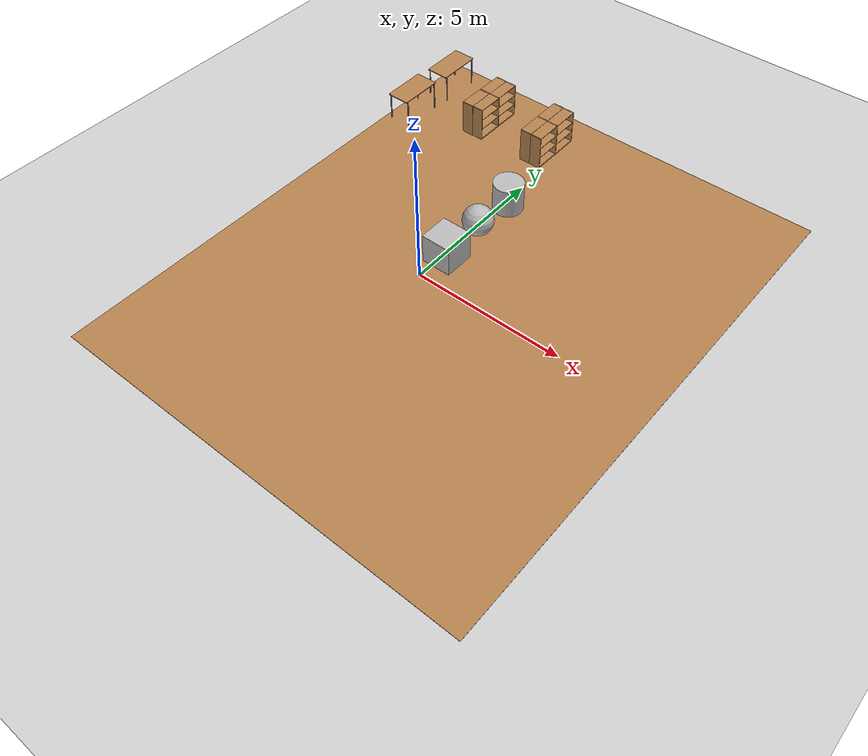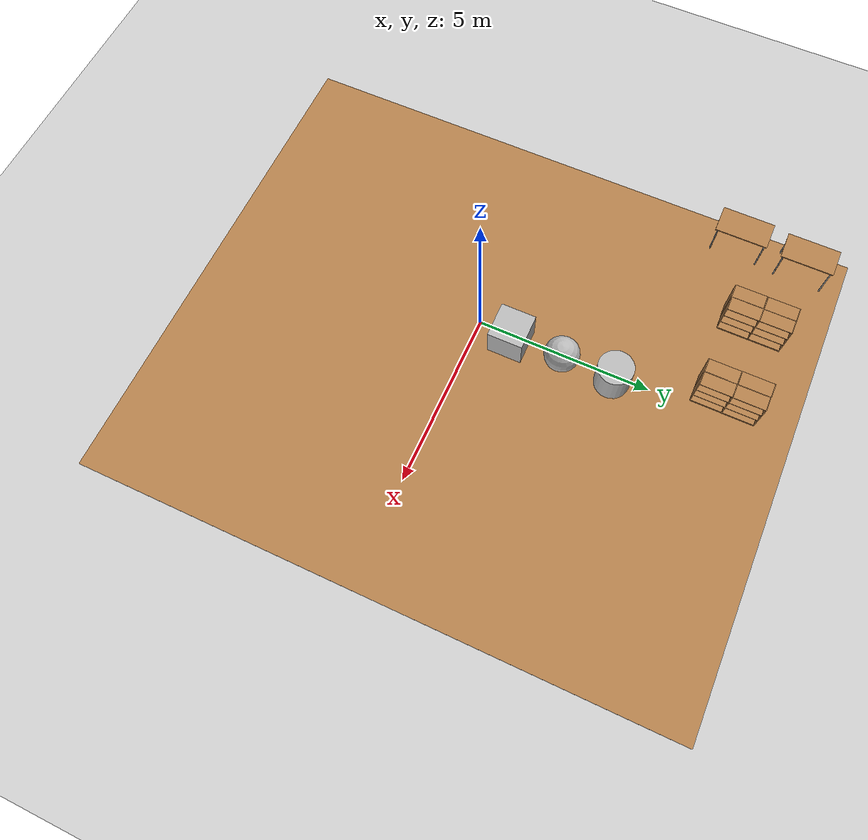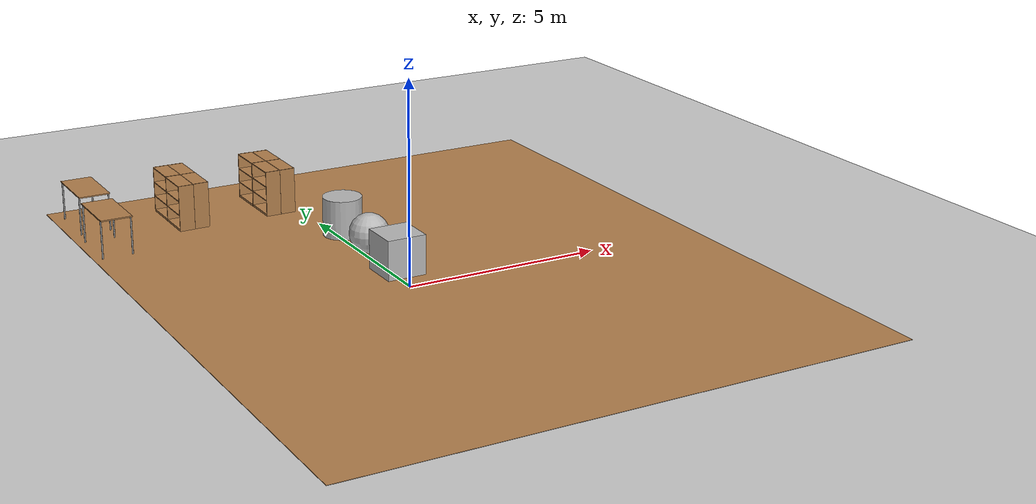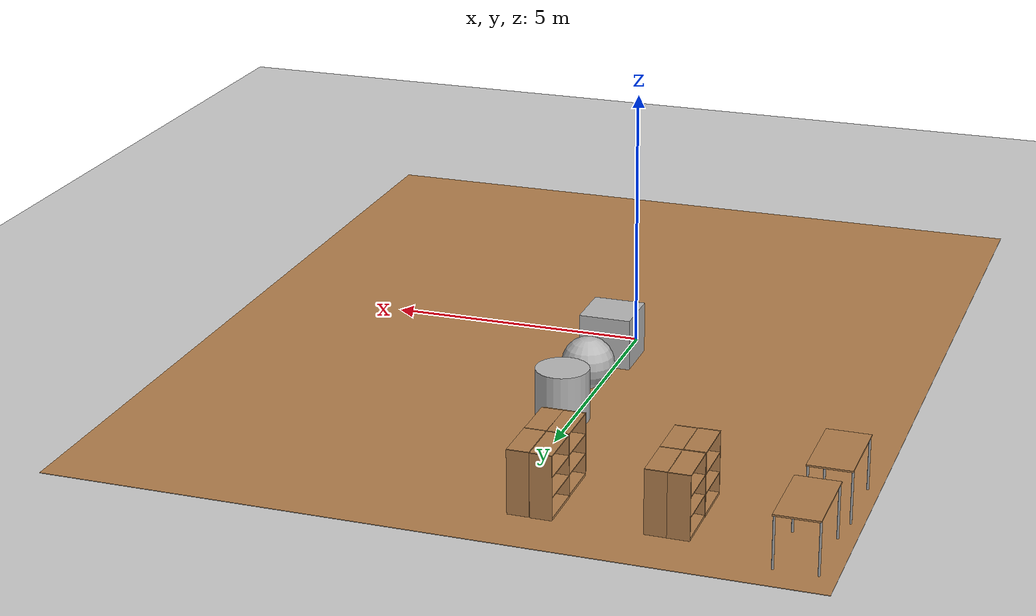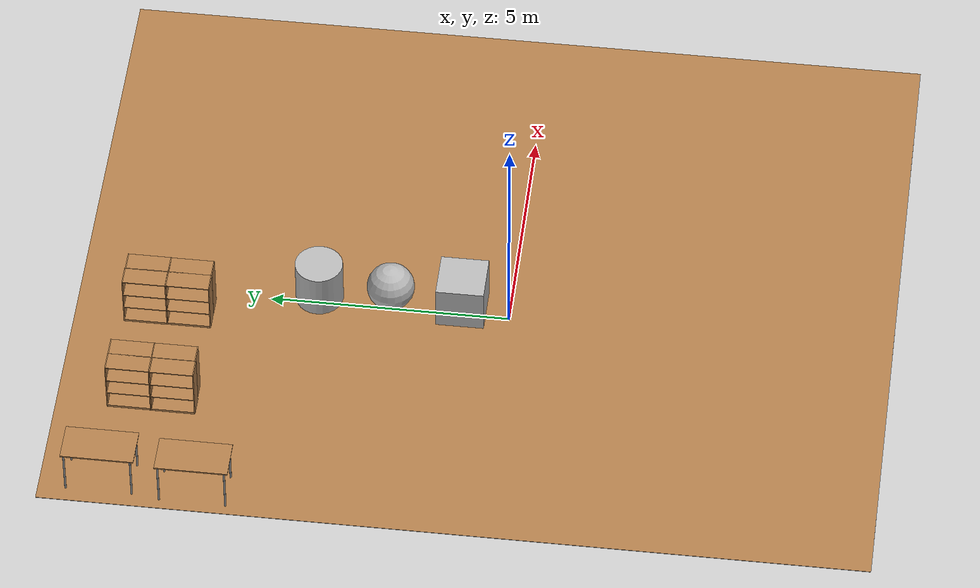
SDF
<sdf version="1.7">
 <world name="default">
  <model name="ground_plane">
   <static>1</static>
   <link name="link">
    <collision name="collision">
     <geometry><plane><normal>0 0 1</normal><size>100 100</size></plane></geometry>
     <surface>
      <contact><collide_bitmask>65535</collide_bitmask></contact>
      <friction><ode><mu>100</mu><mu2>50</mu2></ode></friction>
     </surface>
    </collision>
    <visual name="visual">
     <cast_shadows>0</cast_shadows>
     <geometry><plane><normal>0 0 1</normal><size>100 100</size></plane></geometry>
     <material>
      <script><uri>file://media/materials/scripts/gazebo.material</uri><name>Gazebo/Grey</name></script>
     </material>
    </visual>
   </link>
  </model>
  <model name="ground">
   <link name="Wall_2">
    <pose>6.2457 -16.572 0 0 -0 0</pose>
    <inertial>
     <mass>1</mass>
     <inertia><ixx>1</ixx><ixy>0</ixy><ixz>0</ixz><iyy>1</iyy><iyz>0</iyz><izz>1</izz></inertia>
    </inertial>
    <visual name="Wall_2_Visual">
     <pose>0 0 0.005 0 -0 0</pose>
     <geometry><box><size>14 17 0.01</size></box></geometry>
     <material>
      <script><uri>file://media/materials/scripts/gazebo.material</uri><name>Gazebo/Wood</name></script>
      <ambient>0 0 0 1</ambient>
      <shader type="pixel"><normal_map>__default__</normal_map></shader>
      <diffuse>1 1 1 1</diffuse>
      <specular>0.2 0.2 0.2 1</specular>
      <emissive>0 0 0 1</emissive>
     </material>
     <meta><layer>0</layer></meta>
    </visual>
    <collision name="Wall_2_Collision">
     <pose>0 0 0.005 0 -0 0</pose>
     <geometry><box><size>14 17 0.01</size></box></geometry>
     <surface>
      <friction>
       <ode><mu>1</mu><mu2>1</mu2><fdir1>0 0 0</fdir1><slip1>0</slip1><slip2>0</slip2></ode>
       <torsional>
        <coefficient>1</coefficient>
        <patch_radius>0</patch_radius>
        <surface_radius>0</surface_radius>
        <use_patch_radius>1</use_patch_radius>
        <ode><slip>0</slip></ode>
       </torsional>
      </friction>
      <bounce><restitution_coefficient>0</restitution_coefficient><threshold>1e+06</threshold></bounce>
      <contact>
       <collide_without_contact>0</collide_without_contact>
       <collide_without_contact_bitmask>1</collide_without_contact_bitmask>
       <collide_bitmask>1</collide_bitmask>
       <ode>
        <soft_cfm>0</soft_cfm>
        <soft_erp>0.2</soft_erp>
        <kp>1e+13</kp>
        <kd>1</kd>
        <max_vel>0.01</max_vel>
        <min_depth>0</min_depth>
       </ode>
       <bullet>
        <split_impulse>1</split_impulse>
        <split_impulse_penetration_threshold>-0.01</split_impulse_penetration_threshold>
        <soft_cfm>0</soft_cfm>
        <soft_erp>0.2</soft_erp>
        <kp>1e+13</kp>
        <kd>1</kd>
       </bullet>
      </contact>
     </surface>
    </collision>
   </link>
   <static>1</static>
   <pose>-5.17108 17.0771 0 0 -0 0</pose>
  </model>
  <model name="textured_shapes">
   <pose>0.185477 2.50227 0.51 0 -0 0.000163</pose>
   <link name="box">
    <pose>0 -1.5 0 0 -0 0</pose>
    <collision name="collision"><geometry><box><size>1 1 1</size></box></geometry></collision>
    <visual name="visual">
     <geometry><box><size>1 1 1</size></box></geometry>
     <material>
      <script>
       <uri>model://textured_shapes/materials/scripts</uri>
       <uri>model://textured_shapes/materials/textures</uri>
       <name>TexturedShape/Squares</name>
      </script>
     </material>
    </visual>
    <inertial>
     <inertia><ixx>1</ixx><ixy>0</ixy><ixz>0</ixz><iyy>1</iyy><iyz>0</iyz><izz>1</izz></inertia>
     <mass>1</mass>
    </inertial>
   </link>
   <link name="sphere">
    <collision name="collision"><geometry><sphere><radius>0.5</radius></sphere></geometry></collision>
    <visual name="visual">
     <geometry><sphere><radius>0.5</radius></sphere></geometry>
     <material>
      <script>
       <uri>model://textured_shapes/materials/scripts</uri>
       <uri>model://textured_shapes/materials/textures</uri>
       <name>TexturedShape/Squares</name>
      </script>
     </material>
    </visual>
    <inertial>
     <inertia><ixx>1</ixx><ixy>0</ixy><ixz>0</ixz><iyy>1</iyy><iyz>0</iyz><izz>1</izz></inertia>
     <mass>1</mass>
    </inertial>
   </link>
   <link name="cylinder">
    <pose>0 1.5 0 0 -0 0</pose>
    <collision name="collision">
     <geometry><cylinder><radius>0.5</radius><length>1</length></cylinder></geometry>
    </collision>
    <visual name="visual">
     <geometry><cylinder><radius>0.5</radius><length>1</length></cylinder></geometry>
     <material>
      <script>
       <uri>model://textured_shapes/materials/scripts</uri>
       <uri>model://textured_shapes/materials/textures</uri>
       <name>TexturedShape/Squares</name>
      </script>
     </material>
    </visual>
    <inertial>
     <inertia><ixx>1</ixx><ixy>0</ixy><ixz>0</ixz><iyy>1</iyy><iyz>0</iyz><izz>1</izz></inertia>
     <mass>1</mass>
    </inertial>
   </link>
  </model>
  <model name="table_0">
   <static>1</static>
   <link name="link">
    <collision name="surface">
     <pose>0 0 1 0 -0 0</pose>
     <geometry><box><size>1.5 0.8 0.03</size></box></geometry>
     <surface><friction><ode><mu>0.6</mu><mu2>0.6</mu2></ode></friction></surface>
    </collision>
    <visual name="visual1">
     <pose>0 0 1 0 -0 0</pose>
     <geometry><box><size>1.5 0.8 0.03</size></box></geometry>
     <material>
      <script><uri>file://media/materials/scripts/gazebo.material</uri><name>Gazebo/Wood</name></script>
     </material>
    </visual>
    <collision name="front_left_leg">
     <pose>0.68 0.38 0.5 0 -0 0</pose>
     <geometry><cylinder><radius>0.02</radius><length>1</length></cylinder></geometry>
    </collision>
    <visual name="front_left_leg">
     <pose>0.68 0.38 0.5 0 -0 0</pose>
     <geometry><cylinder><radius>0.02</radius><length>1</length></cylinder></geometry>
     <material>
      <script><uri>file://media/materials/scripts/gazebo.material</uri><name>Gazebo/Grey</name></script>
     </material>
    </visual>
    <collision name="front_right_leg">
     <pose>0.68 -0.38 0.5 0 -0 0</pose>
     <geometry><cylinder><radius>0.02</radius><length>1</length></cylinder></geometry>
    </collision>
    <visual name="front_right_leg">
     <pose>0.68 -0.38 0.5 0 -0 0</pose>
     <geometry><cylinder><radius>0.02</radius><length>1</length></cylinder></geometry>
     <material>
      <script><uri>file://media/materials/scripts/gazebo.material</uri><name>Gazebo/Grey</name></script>
     </material>
    </visual>
    <collision name="back_right_leg">
     <pose>-0.68 -0.38 0.5 0 -0 0</pose>
     <geometry><cylinder><radius>0.02</radius><length>1</length></cylinder></geometry>
    </collision>
    <visual name="back_right_leg">
     <pose>-0.68 -0.38 0.5 0 -0 0</pose>
     <geometry><cylinder><radius>0.02</radius><length>1</length></cylinder></geometry>
     <material>
      <script><uri>file://media/materials/scripts/gazebo.material</uri><name>Gazebo/Grey</name></script>
     </material>
    </visual>
    <collision name="back_left_leg">
     <pose>-0.68 0.38 0.5 0 -0 0</pose>
     <geometry><cylinder><radius>0.02</radius><length>1</length></cylinder></geometry>
    </collision>
    <visual name="back_left_leg">
     <pose>-0.68 0.38 0.5 0 -0 0</pose>
     <geometry><cylinder><radius>0.02</radius><length>1</length></cylinder></geometry>
     <material>
      <script><uri>file://media/materials/scripts/gazebo.material</uri><name>Gazebo/Grey</name></script>
     </material>
    </visual>
   </link>
   <pose>-5.2296 7.75467 0 0 -0 1.5708</pose>
  </model>
  <model name="table_0_clone">
   <static>1</static>
   <link name="link">
    <collision name="surface">
     <pose>0 0 1 0 -0 0</pose>
     <geometry><box><size>1.5 0.8 0.03</size></box></geometry>
     <surface><friction><ode><mu>0.6</mu><mu2>0.6</mu2></ode></friction></surface>
    </collision>
    <visual name="visual1">
     <pose>0 0 1 0 -0 0</pose>
     <geometry><box><size>1.5 0.8 0.03</size></box></geometry>
     <material>
      <script><uri>file://media/materials/scripts/gazebo.material</uri><name>Gazebo/Wood</name></script>
     </material>
    </visual>
    <collision name="front_left_leg">
     <pose>0.68 0.38 0.5 0 -0 0</pose>
     <geometry><cylinder><radius>0.02</radius><length>1</length></cylinder></geometry>
    </collision>
    <visual name="front_left_leg">
     <pose>0.68 0.38 0.5 0 -0 0</pose>
     <geometry><cylinder><radius>0.02</radius><length>1</length></cylinder></geometry>
     <material>
      <script><uri>file://media/materials/scripts/gazebo.material</uri><name>Gazebo/Grey</name></script>
     </material>
    </visual>
    <collision name="front_right_leg">
     <pose>0.68 -0.38 0.5 0 -0 0</pose>
     <geometry><cylinder><radius>0.02</radius><length>1</length></cylinder></geometry>
    </collision>
    <visual name="front_right_leg">
     <pose>0.68 -0.38 0.5 0 -0 0</pose>
     <geometry><cylinder><radius>0.02</radius><length>1</length></cylinder></geometry>
     <material>
      <script><uri>file://media/materials/scripts/gazebo.material</uri><name>Gazebo/Grey</name></script>
     </material>
    </visual>
    <collision name="back_right_leg">
     <pose>-0.68 -0.38 0.5 0 -0 0</pose>
     <geometry><cylinder><radius>0.02</radius><length>1</length></cylinder></geometry>
    </collision>
    <visual name="back_right_leg">
     <pose>-0.68 -0.38 0.5 0 -0 0</pose>
     <geometry><cylinder><radius>0.02</radius><length>1</length></cylinder></geometry>
     <material>
      <script><uri>file://media/materials/scripts/gazebo.material</uri><name>Gazebo/Grey</name></script>
     </material>
    </visual>
    <collision name="back_left_leg">
     <pose>-0.68 0.38 0.5 0 -0 0</pose>
     <geometry><cylinder><radius>0.02</radius><length>1</length></cylinder></geometry>
    </collision>
    <visual name="back_left_leg">
     <pose>-0.68 0.38 0.5 0 -0 0</pose>
     <geometry><cylinder><radius>0.02</radius><length>1</length></cylinder></geometry>
     <material>
      <script><uri>file://media/materials/scripts/gazebo.material</uri><name>Gazebo/Grey</name></script>
     </material>
    </visual>
   </link>
   <pose>-5.32331 5.82081 0 0 -0 1.5708</pose>
  </model>
  <model name="bookshelf_clone_1">
   <static>1</static>
   <link name="link">
    <inertial><mass>1</mass></inertial>
    <collision name="back">
     <pose>0 0.005 0.6 0 -0 0</pose>
     <geometry><box><size>0.9 0.01 1.2</size></box></geometry>
    </collision>
    <visual name="visual1">
     <pose>0 0.005 0.6 0 -0 0</pose>
     <geometry><box><size>0.9 0.01 1.2</size></box></geometry>
     <material>
      <script><uri>file://media/materials/scripts/gazebo.material</uri><name>Gazebo/Wood</name></script>
     </material>
    </visual>
    <collision name="left_side">
     <pose>0.45 -0.195 0.6 0 -0 0</pose>
     <geometry><box><size>0.02 0.4 1.2</size></box></geometry>
    </collision>
    <visual name="visual2">
     <pose>0.45 -0.195 0.6 0 -0 0</pose>
     <geometry><box><size>0.02 0.4 1.2</size></box></geometry>
     <material>
      <script><uri>file://media/materials/scripts/gazebo.material</uri><name>Gazebo/Wood</name></script>
     </material>
    </visual>
    <collision name="right_side">
     <pose>-0.45 -0.195 0.6 0 -0 0</pose>
     <geometry><box><size>0.02 0.4 1.2</size></box></geometry>
    </collision>
    <visual name="visual3">
     <pose>-0.45 -0.195 0.6 0 -0 0</pose>
     <geometry><box><size>0.02 0.4 1.2</size></box></geometry>
     <material>
      <script><uri>file://media/materials/scripts/gazebo.material</uri><name>Gazebo/Wood</name></script>
     </material>
    </visual>
    <collision name="bottom">
     <pose>0 -0.195 0.03 0 -0 0</pose>
     <geometry><box><size>0.88 0.4 0.06</size></box></geometry>
    </collision>
    <visual name="visual4">
     <pose>0 -0.195 0.03 0 -0 0</pose>
     <geometry><box><size>0.88 0.4 0.06</size></box></geometry>
     <material>
      <script><uri>file://media/materials/scripts/gazebo.material</uri><name>Gazebo/Wood</name></script>
     </material>
    </visual>
    <collision name="top">
     <pose>0 -0.195 1.19 0 -0 0</pose>
     <geometry><box><size>0.88 0.4 0.02</size></box></geometry>
    </collision>
    <visual name="visual5">
     <pose>0 -0.195 1.19 0 -0 0</pose>
     <geometry><box><size>0.88 0.4 0.02</size></box></geometry>
     <material>
      <script><uri>file://media/materials/scripts/gazebo.material</uri><name>Gazebo/Wood</name></script>
     </material>
    </visual>
    <collision name="low_shelf">
     <pose>0 -0.195 0.43 0 -0 0</pose>
     <geometry><box><size>0.88 0.4 0.02</size></box></geometry>
    </collision>
    <visual name="visual6">
     <pose>0 -0.195 0.43 0 -0 0</pose>
     <geometry><box><size>0.88 0.4 0.02</size></box></geometry>
     <material>
      <script><uri>file://media/materials/scripts/gazebo.material</uri><name>Gazebo/Wood</name></script>
     </material>
    </visual>
    <collision name="high_shelf">
     <pose>0 -0.195 0.8 0 -0 0</pose>
     <geometry><box><size>0.88 0.4 0.02</size></box></geometry>
    </collision>
    <visual name="visual7">
     <pose>0 -0.195 0.8 0 -0 0</pose>
     <geometry><box><size>0.88 0.4 0.02</size></box></geometry>
     <material>
      <script><uri>file://media/materials/scripts/gazebo.material</uri><name>Gazebo/Wood</name></script>
     </material>
    </visual>
   </link>
   <pose>-0.570351 7.49958 0 0 0 -1.5708</pose>
  </model>
  <model name="bookshelf_clone_2">
   <static>1</static>
   <link name="link">
    <inertial><mass>1</mass></inertial>
    <collision name="back">
     <pose>0 0.005 0.6 0 -0 0</pose>
     <geometry><box><size>0.9 0.01 1.2</size></box></geometry>
    </collision>
    <visual name="visual1">
     <pose>0 0.005 0.6 0 -0 0</pose>
     <geometry><box><size>0.9 0.01 1.2</size></box></geometry>
     <material>
      <script><uri>file://media/materials/scripts/gazebo.material</uri><name>Gazebo/Wood</name></script>
     </material>
    </visual>
    <collision name="left_side">
     <pose>0.45 -0.195 0.6 0 -0 0</pose>
     <geometry><box><size>0.02 0.4 1.2</size></box></geometry>
    </collision>
    <visual name="visual2">
     <pose>0.45 -0.195 0.6 0 -0 0</pose>
     <geometry><box><size>0.02 0.4 1.2</size></box></geometry>
     <material>
      <script><uri>file://media/materials/scripts/gazebo.material</uri><name>Gazebo/Wood</name></script>
     </material>
    </visual>
    <collision name="right_side">
     <pose>-0.45 -0.195 0.6 0 -0 0</pose>
     <geometry><box><size>0.02 0.4 1.2</size></box></geometry>
    </collision>
    <visual name="visual3">
     <pose>-0.45 -0.195 0.6 0 -0 0</pose>
     <geometry><box><size>0.02 0.4 1.2</size></box></geometry>
     <material>
      <script><uri>file://media/materials/scripts/gazebo.material</uri><name>Gazebo/Wood</name></script>
     </material>
    </visual>
    <collision name="bottom">
     <pose>0 -0.195 0.03 0 -0 0</pose>
     <geometry><box><size>0.88 0.4 0.06</size></box></geometry>
    </collision>
    <visual name="visual4">
     <pose>0 -0.195 0.03 0 -0 0</pose>
     <geometry><box><size>0.88 0.4 0.06</size></box></geometry>
     <material>
      <script><uri>file://media/materials/scripts/gazebo.material</uri><name>Gazebo/Wood</name></script>
     </material>
    </visual>
    <collision name="top">
     <pose>0 -0.195 1.19 0 -0 0</pose>
     <geometry><box><size>0.88 0.4 0.02</size></box></geometry>
    </collision>
    <visual name="visual5">
     <pose>0 -0.195 1.19 0 -0 0</pose>
     <geometry><box><size>0.88 0.4 0.02</size></box></geometry>
     <material>
      <script><uri>file://media/materials/scripts/gazebo.material</uri><name>Gazebo/Wood</name></script>
     </material>
    </visual>
    <collision name="low_shelf">
     <pose>0 -0.195 0.43 0 -0 0</pose>
     <geometry><box><size>0.88 0.4 0.02</size></box></geometry>
    </collision>
    <visual name="visual6">
     <pose>0 -0.195 0.43 0 -0 0</pose>
     <geometry><box><size>0.88 0.4 0.02</size></box></geometry>
     <material>
      <script><uri>file://media/materials/scripts/gazebo.material</uri><name>Gazebo/Wood</name></script>
     </material>
    </visual>
    <collision name="high_shelf">
     <pose>0 -0.195 0.8 0 -0 0</pose>
     <geometry><box><size>0.88 0.4 0.02</size></box></geometry>
    </collision>
    <visual name="visual7">
     <pose>0 -0.195 0.8 0 -0 0</pose>
     <geometry><box><size>0.88 0.4 0.02</size></box></geometry>
     <material>
      <script><uri>file://media/materials/scripts/gazebo.material</uri><name>Gazebo/Wood</name></script>
     </material>
    </visual>
   </link>
   <pose>-0.563736 6.59398 0 0 0 -1.5708</pose>
  </model>
  <model name="bookshelf_clone_3">
   <static>1</static>
   <link name="link">
    <inertial><mass>1</mass></inertial>
    <collision name="back">
     <pose>0 0.005 0.6 0 -0 0</pose>
     <geometry><box><size>0.9 0.01 1.2</size></box></geometry>
    </collision>
    <visual name="visual1">
     <pose>0 0.005 0.6 0 -0 0</pose>
     <geometry><box><size>0.9 0.01 1.2</size></box></geometry>
     <material>
      <script><uri>file://media/materials/scripts/gazebo.material</uri><name>Gazebo/Wood</name></script>
     </material>
    </visual>
    <collision name="left_side">
     <pose>0.45 -0.195 0.6 0 -0 0</pose>
     <geometry><box><size>0.02 0.4 1.2</size></box></geometry>
    </collision>
    <visual name="visual2">
     <pose>0.45 -0.195 0.6 0 -0 0</pose>
     <geometry><box><size>0.02 0.4 1.2</size></box></geometry>
     <material>
      <script><uri>file://media/materials/scripts/gazebo.material</uri><name>Gazebo/Wood</name></script>
     </material>
    </visual>
    <collision name="right_side">
     <pose>-0.45 -0.195 0.6 0 -0 0</pose>
     <geometry><box><size>0.02 0.4 1.2</size></box></geometry>
    </collision>
    <visual name="visual3">
     <pose>-0.45 -0.195 0.6 0 -0 0</pose>
     <geometry><box><size>0.02 0.4 1.2</size></box></geometry>
     <material>
      <script><uri>file://media/materials/scripts/gazebo.material</uri><name>Gazebo/Wood</name></script>
     </material>
    </visual>
    <collision name="bottom">
     <pose>0 -0.195 0.03 0 -0 0</pose>
     <geometry><box><size>0.88 0.4 0.06</size></box></geometry>
    </collision>
    <visual name="visual4">
     <pose>0 -0.195 0.03 0 -0 0</pose>
     <geometry><box><size>0.88 0.4 0.06</size></box></geometry>
     <material>
      <script><uri>file://media/materials/scripts/gazebo.material</uri><name>Gazebo/Wood</name></script>
     </material>
    </visual>
    <collision name="top">
     <pose>0 -0.195 1.19 0 -0 0</pose>
     <geometry><box><size>0.88 0.4 0.02</size></box></geometry>
    </collision>
    <visual name="visual5">
     <pose>0 -0.195 1.19 0 -0 0</pose>
     <geometry><box><size>0.88 0.4 0.02</size></box></geometry>
     <material>
      <script><uri>file://media/materials/scripts/gazebo.material</uri><name>Gazebo/Wood</name></script>
     </material>
    </visual>
    <collision name="low_shelf">
     <pose>0 -0.195 0.43 0 -0 0</pose>
     <geometry><box><size>0.88 0.4 0.02</size></box></geometry>
    </collision>
    <visual name="visual6">
     <pose>0 -0.195 0.43 0 -0 0</pose>
     <geometry><box><size>0.88 0.4 0.02</size></box></geometry>
     <material>
      <script><uri>file://media/materials/scripts/gazebo.material</uri><name>Gazebo/Wood</name></script>
     </material>
    </visual>
    <collision name="high_shelf">
     <pose>0 -0.195 0.8 0 -0 0</pose>
     <geometry><box><size>0.88 0.4 0.02</size></box></geometry>
    </collision>
    <visual name="visual7">
     <pose>0 -0.195 0.8 0 -0 0</pose>
     <geometry><box><size>0.88 0.4 0.02</size></box></geometry>
     <material>
      <script><uri>file://media/materials/scripts/gazebo.material</uri><name>Gazebo/Wood</name></script>
     </material>
    </visual>
   </link>
   <pose>-2.94499 7.48329 0 0 0 -1.5708</pose>
  </model>
  <model name="bookshelf_clone_4">
   <static>1</static>
   <link name="link">
    <inertial><mass>1</mass></inertial>
    <collision name="back">
     <pose>0 0.005 0.6 0 -0 0</pose>
     <geometry><box><size>0.9 0.01 1.2</size></box></geometry>
    </collision>
    <visual name="visual1">
     <pose>0 0.005 0.6 0 -0 0</pose>
     <geometry><box><size>0.9 0.01 1.2</size></box></geometry>
     <material>
      <script><uri>file://media/materials/scripts/gazebo.material</uri><name>Gazebo/Wood</name></script>
     </material>
    </visual>
    <collision name="left_side">
     <pose>0.45 -0.195 0.6 0 -0 0</pose>
     <geometry><box><size>0.02 0.4 1.2</size></box></geometry>
    </collision>
    <visual name="visual2">
     <pose>0.45 -0.195 0.6 0 -0 0</pose>
     <geometry><box><size>0.02 0.4 1.2</size></box></geometry>
     <material>
      <script><uri>file://media/materials/scripts/gazebo.material</uri><name>Gazebo/Wood</name></script>
     </material>
    </visual>
    <collision name="right_side">
     <pose>-0.45 -0.195 0.6 0 -0 0</pose>
     <geometry><box><size>0.02 0.4 1.2</size></box></geometry>
    </collision>
    <visual name="visual3">
     <pose>-0.45 -0.195 0.6 0 -0 0</pose>
     <geometry><box><size>0.02 0.4 1.2</size></box></geometry>
     <material>
      <script><uri>file://media/materials/scripts/gazebo.material</uri><name>Gazebo/Wood</name></script>
     </material>
    </visual>
    <collision name="bottom">
     <pose>0 -0.195 0.03 0 -0 0</pose>
     <geometry><box><size>0.88 0.4 0.06</size></box></geometry>
    </collision>
    <visual name="visual4">
     <pose>0 -0.195 0.03 0 -0 0</pose>
     <geometry><box><size>0.88 0.4 0.06</size></box></geometry>
     <material>
      <script><uri>file://media/materials/scripts/gazebo.material</uri><name>Gazebo/Wood</name></script>
     </material>
    </visual>
    <collision name="top">
     <pose>0 -0.195 1.19 0 -0 0</pose>
     <geometry><box><size>0.88 0.4 0.02</size></box></geometry>
    </collision>
    <visual name="visual5">
     <pose>0 -0.195 1.19 0 -0 0</pose>
     <geometry><box><size>0.88 0.4 0.02</size></box></geometry>
     <material>
      <script><uri>file://media/materials/scripts/gazebo.material</uri><name>Gazebo/Wood</name></script>
     </material>
    </visual>
    <collision name="low_shelf">
     <pose>0 -0.195 0.43 0 -0 0</pose>
     <geometry><box><size>0.88 0.4 0.02</size></box></geometry>
    </collision>
    <visual name="visual6">
     <pose>0 -0.195 0.43 0 -0 0</pose>
     <geometry><box><size>0.88 0.4 0.02</size></box></geometry>
     <material>
      <script><uri>file://media/materials/scripts/gazebo.material</uri><name>Gazebo/Wood</name></script>
     </material>
    </visual>
    <collision name="high_shelf">
     <pose>0 -0.195 0.8 0 -0 0</pose>
     <geometry><box><size>0.88 0.4 0.02</size></box></geometry>
    </collision>
    <visual name="visual7">
     <pose>0 -0.195 0.8 0 -0 0</pose>
     <geometry><box><size>0.88 0.4 0.02</size></box></geometry>
     <material>
      <script><uri>file://media/materials/scripts/gazebo.material</uri><name>Gazebo/Wood</name></script>
     </material>
    </visual>
   </link>
   <pose>-2.94936 6.5693 0 0 0 -1.5708</pose>
  </model>
  <model name="bookshelf_clone_3_clone">
   <static>1</static>
   <link name="link">
    <inertial><mass>1</mass></inertial>
    <collision name="back">
     <pose>0 0.005 0.6 0 -0 0</pose>
     <geometry><box><size>0.9 0.01 1.2</size></box></geometry>
    </collision>
    <visual name="visual1">
     <pose>0 0.005 0.6 0 -0 0</pose>
     <geometry><box><size>0.9 0.01 1.2</size></box></geometry>
     <material>
      <script><uri>file://media/materials/scripts/gazebo.material</uri><name>Gazebo/Wood</name></script>
     </material>
    </visual>
    <collision name="left_side">
     <pose>0.45 -0.195 0.6 0 -0 0</pose>
     <geometry><box><size>0.02 0.4 1.2</size></box></geometry>
    </collision>
    <visual name="visual2">
     <pose>0.45 -0.195 0.6 0 -0 0</pose>
     <geometry><box><size>0.02 0.4 1.2</size></box></geometry>
     <material>
      <script><uri>file://media/materials/scripts/gazebo.material</uri><name>Gazebo/Wood</name></script>
     </material>
    </visual>
    <collision name="right_side">
     <pose>-0.45 -0.195 0.6 0 -0 0</pose>
     <geometry><box><size>0.02 0.4 1.2</size></box></geometry>
    </collision>
    <visual name="visual3">
     <pose>-0.45 -0.195 0.6 0 -0 0</pose>
     <geometry><box><size>0.02 0.4 1.2</size></box></geometry>
     <material>
      <script><uri>file://media/materials/scripts/gazebo.material</uri><name>Gazebo/Wood</name></script>
     </material>
    </visual>
    <collision name="bottom">
     <pose>0 -0.195 0.03 0 -0 0</pose>
     <geometry><box><size>0.88 0.4 0.06</size></box></geometry>
    </collision>
    <visual name="visual4">
     <pose>0 -0.195 0.03 0 -0 0</pose>
     <geometry><box><size>0.88 0.4 0.06</size></box></geometry>
     <material>
      <script><uri>file://media/materials/scripts/gazebo.material</uri><name>Gazebo/Wood</name></script>
     </material>
    </visual>
    <collision name="top">
     <pose>0 -0.195 1.19 0 -0 0</pose>
     <geometry><box><size>0.88 0.4 0.02</size></box></geometry>
    </collision>
    <visual name="visual5">
     <pose>0 -0.195 1.19 0 -0 0</pose>
     <geometry><box><size>0.88 0.4 0.02</size></box></geometry>
     <material>
      <script><uri>file://media/materials/scripts/gazebo.material</uri><name>Gazebo/Wood</name></script>
     </material>
    </visual>
    <collision name="low_shelf">
     <pose>0 -0.195 0.43 0 -0 0</pose>
     <geometry><box><size>0.88 0.4 0.02</size></box></geometry>
    </collision>
    <visual name="visual6">
     <pose>0 -0.195 0.43 0 -0 0</pose>
     <geometry><box><size>0.88 0.4 0.02</size></box></geometry>
     <material>
      <script><uri>file://media/materials/scripts/gazebo.material</uri><name>Gazebo/Wood</name></script>
     </material>
    </visual>
    <collision name="high_shelf">
     <pose>0 -0.195 0.8 0 -0 0</pose>
     <geometry><box><size>0.88 0.4 0.02</size></box></geometry>
    </collision>
    <visual name="visual7">
     <pose>0 -0.195 0.8 0 -0 0</pose>
     <geometry><box><size>0.88 0.4 0.02</size></box></geometry>
     <material>
      <script><uri>file://media/materials/scripts/gazebo.material</uri><name>Gazebo/Wood</name></script>
     </material>
    </visual>
   </link>
   <pose>-2.93976 7.47947 0 0 -0 1.5708</pose>
  </model>
  <model name="bookshelf_clone_3_clone_clone">
   <static>1</static>
   <link name="link">
    <inertial><mass>1</mass></inertial>
    <collision name="back">
     <pose>0 0.005 0.6 0 -0 0</pose>
     <geometry><box><size>0.9 0.01 1.2</size></box></geometry>
    </collision>
    <visual name="visual1">
     <pose>0 0.005 0.6 0 -0 0</pose>
     <geometry><box><size>0.9 0.01 1.2</size></box></geometry>
     <material>
      <script><uri>file://media/materials/scripts/gazebo.material</uri><name>Gazebo/Wood</name></script>
     </material>
    </visual>
    <collision name="left_side">
     <pose>0.45 -0.195 0.6 0 -0 0</pose>
     <geometry><box><size>0.02 0.4 1.2</size></box></geometry>
    </collision>
    <visual name="visual2">
     <pose>0.45 -0.195 0.6 0 -0 0</pose>
     <geometry><box><size>0.02 0.4 1.2</size></box></geometry>
     <material>
      <script><uri>file://media/materials/scripts/gazebo.material</uri><name>Gazebo/Wood</name></script>
     </material>
    </visual>
    <collision name="right_side">
     <pose>-0.45 -0.195 0.6 0 -0 0</pose>
     <geometry><box><size>0.02 0.4 1.2</size></box></geometry>
    </collision>
    <visual name="visual3">
     <pose>-0.45 -0.195 0.6 0 -0 0</pose>
     <geometry><box><size>0.02 0.4 1.2</size></box></geometry>
     <material>
      <script><uri>file://media/materials/scripts/gazebo.material</uri><name>Gazebo/Wood</name></script>
     </material>
    </visual>
    <collision name="bottom">
     <pose>0 -0.195 0.03 0 -0 0</pose>
     <geometry><box><size>0.88 0.4 0.06</size></box></geometry>
    </collision>
    <visual name="visual4">
     <pose>0 -0.195 0.03 0 -0 0</pose>
     <geometry><box><size>0.88 0.4 0.06</size></box></geometry>
     <material>
      <script><uri>file://media/materials/scripts/gazebo.material</uri><name>Gazebo/Wood</name></script>
     </material>
    </visual>
    <collision name="top">
     <pose>0 -0.195 1.19 0 -0 0</pose>
     <geometry><box><size>0.88 0.4 0.02</size></box></geometry>
    </collision>
    <visual name="visual5">
     <pose>0 -0.195 1.19 0 -0 0</pose>
     <geometry><box><size>0.88 0.4 0.02</size></box></geometry>
     <material>
      <script><uri>file://media/materials/scripts/gazebo.material</uri><name>Gazebo/Wood</name></script>
     </material>
    </visual>
    <collision name="low_shelf">
     <pose>0 -0.195 0.43 0 -0 0</pose>
     <geometry><box><size>0.88 0.4 0.02</size></box></geometry>
    </collision>
    <visual name="visual6">
     <pose>0 -0.195 0.43 0 -0 0</pose>
     <geometry><box><size>0.88 0.4 0.02</size></box></geometry>
     <material>
      <script><uri>file://media/materials/scripts/gazebo.material</uri><name>Gazebo/Wood</name></script>
     </material>
    </visual>
    <collision name="high_shelf">
     <pose>0 -0.195 0.8 0 -0 0</pose>
     <geometry><box><size>0.88 0.4 0.02</size></box></geometry>
    </collision>
    <visual name="visual7">
     <pose>0 -0.195 0.8 0 -0 0</pose>
     <geometry><box><size>0.88 0.4 0.02</size></box></geometry>
     <material>
      <script><uri>file://media/materials/scripts/gazebo.material</uri><name>Gazebo/Wood</name></script>
     </material>
    </visual>
   </link>
   <pose>-2.93897 6.5807 0 0 -0 1.5708</pose>
  </model>
  <model name="bookshelf_clone_3_clone_clone_0">
   <static>1</static>
   <link name="link">
    <inertial><mass>1</mass></inertial>
    <collision name="back">
     <pose>0 0.005 0.6 0 -0 0</pose>
     <geometry><box><size>0.9 0.01 1.2</size></box></geometry>
    </collision>
    <visual name="visual1">
     <pose>0 0.005 0.6 0 -0 0</pose>
     <geometry><box><size>0.9 0.01 1.2</size></box></geometry>
     <material>
      <script><uri>file://media/materials/scripts/gazebo.material</uri><name>Gazebo/Wood</name></script>
     </material>
    </visual>
    <collision name="left_side">
     <pose>0.45 -0.195 0.6 0 -0 0</pose>
     <geometry><box><size>0.02 0.4 1.2</size></box></geometry>
    </collision>
    <visual name="visual2">
     <pose>0.45 -0.195 0.6 0 -0 0</pose>
     <geometry><box><size>0.02 0.4 1.2</size></box></geometry>
     <material>
      <script><uri>file://media/materials/scripts/gazebo.material</uri><name>Gazebo/Wood</name></script>
     </material>
    </visual>
    <collision name="right_side">
     <pose>-0.45 -0.195 0.6 0 -0 0</pose>
     <geometry><box><size>0.02 0.4 1.2</size></box></geometry>
    </collision>
    <visual name="visual3">
     <pose>-0.45 -0.195 0.6 0 -0 0</pose>
     <geometry><box><size>0.02 0.4 1.2</size></box></geometry>
     <material>
      <script><uri>file://media/materials/scripts/gazebo.material</uri><name>Gazebo/Wood</name></script>
     </material>
    </visual>
    <collision name="bottom">
     <pose>0 -0.195 0.03 0 -0 0</pose>
     <geometry><box><size>0.88 0.4 0.06</size></box></geometry>
    </collision>
    <visual name="visual4">
     <pose>0 -0.195 0.03 0 -0 0</pose>
     <geometry><box><size>0.88 0.4 0.06</size></box></geometry>
     <material>
      <script><uri>file://media/materials/scripts/gazebo.material</uri><name>Gazebo/Wood</name></script>
     </material>
    </visual>
    <collision name="top">
     <pose>0 -0.195 1.19 0 -0 0</pose>
     <geometry><box><size>0.88 0.4 0.02</size></box></geometry>
    </collision>
    <visual name="visual5">
     <pose>0 -0.195 1.19 0 -0 0</pose>
     <geometry><box><size>0.88 0.4 0.02</size></box></geometry>
     <material>
      <script><uri>file://media/materials/scripts/gazebo.material</uri><name>Gazebo/Wood</name></script>
     </material>
    </visual>
    <collision name="low_shelf">
     <pose>0 -0.195 0.43 0 -0 0</pose>
     <geometry><box><size>0.88 0.4 0.02</size></box></geometry>
    </collision>
    <visual name="visual6">
     <pose>0 -0.195 0.43 0 -0 0</pose>
     <geometry><box><size>0.88 0.4 0.02</size></box></geometry>
     <material>
      <script><uri>file://media/materials/scripts/gazebo.material</uri><name>Gazebo/Wood</name></script>
     </material>
    </visual>
    <collision name="high_shelf">
     <pose>0 -0.195 0.8 0 -0 0</pose>
     <geometry><box><size>0.88 0.4 0.02</size></box></geometry>
    </collision>
    <visual name="visual7">
     <pose>0 -0.195 0.8 0 -0 0</pose>
     <geometry><box><size>0.88 0.4 0.02</size></box></geometry>
     <material>
      <script><uri>file://media/materials/scripts/gazebo.material</uri><name>Gazebo/Wood</name></script>
     </material>
    </visual>
   </link>
   <pose>-0.55288 7.48852 0 0 -0 1.5708</pose>
  </model>
  <model name="bookshelf_clone_3_clone_clone_1">
   <static>1</static>
   <link name="link">
    <inertial><mass>1</mass></inertial>
    <collision name="back">
     <pose>0 0.005 0.6 0 -0 0</pose>
     <geometry><box><size>0.9 0.01 1.2</size></box></geometry>
    </collision>
    <visual name="visual1">
     <pose>0 0.005 0.6 0 -0 0</pose>
     <geometry><box><size>0.9 0.01 1.2</size></box></geometry>
     <material>
      <script><uri>file://media/materials/scripts/gazebo.material</uri><name>Gazebo/Wood</name></script>
     </material>
    </visual>
    <collision name="left_side">
     <pose>0.45 -0.195 0.6 0 -0 0</pose>
     <geometry><box><size>0.02 0.4 1.2</size></box></geometry>
    </collision>
    <visual name="visual2">
     <pose>0.45 -0.195 0.6 0 -0 0</pose>
     <geometry><box><size>0.02 0.4 1.2</size></box></geometry>
     <material>
      <script><uri>file://media/materials/scripts/gazebo.material</uri><name>Gazebo/Wood</name></script>
     </material>
    </visual>
    <collision name="right_side">
     <pose>-0.45 -0.195 0.6 0 -0 0</pose>
     <geometry><box><size>0.02 0.4 1.2</size></box></geometry>
    </collision>
    <visual name="visual3">
     <pose>-0.45 -0.195 0.6 0 -0 0</pose>
     <geometry><box><size>0.02 0.4 1.2</size></box></geometry>
     <material>
      <script><uri>file://media/materials/scripts/gazebo.material</uri><name>Gazebo/Wood</name></script>
     </material>
    </visual>
    <collision name="bottom">
     <pose>0 -0.195 0.03 0 -0 0</pose>
     <geometry><box><size>0.88 0.4 0.06</size></box></geometry>
    </collision>
    <visual name="visual4">
     <pose>0 -0.195 0.03 0 -0 0</pose>
     <geometry><box><size>0.88 0.4 0.06</size></box></geometry>
     <material>
      <script><uri>file://media/materials/scripts/gazebo.material</uri><name>Gazebo/Wood</name></script>
     </material>
    </visual>
    <collision name="top">
     <pose>0 -0.195 1.19 0 -0 0</pose>
     <geometry><box><size>0.88 0.4 0.02</size></box></geometry>
    </collision>
    <visual name="visual5">
     <pose>0 -0.195 1.19 0 -0 0</pose>
     <geometry><box><size>0.88 0.4 0.02</size></box></geometry>
     <material>
      <script><uri>file://media/materials/scripts/gazebo.material</uri><name>Gazebo/Wood</name></script>
     </material>
    </visual>
    <collision name="low_shelf">
     <pose>0 -0.195 0.43 0 -0 0</pose>
     <geometry><box><size>0.88 0.4 0.02</size></box></geometry>
    </collision>
    <visual name="visual6">
     <pose>0 -0.195 0.43 0 -0 0</pose>
     <geometry><box><size>0.88 0.4 0.02</size></box></geometry>
     <material>
      <script><uri>file://media/materials/scripts/gazebo.material</uri><name>Gazebo/Wood</name></script>
     </material>
    </visual>
    <collision name="high_shelf">
     <pose>0 -0.195 0.8 0 -0 0</pose>
     <geometry><box><size>0.88 0.4 0.02</size></box></geometry>
    </collision>
    <visual name="visual7">
     <pose>0 -0.195 0.8 0 -0 0</pose>
     <geometry><box><size>0.88 0.4 0.02</size></box></geometry>
     <material>
      <script><uri>file://media/materials/scripts/gazebo.material</uri><name>Gazebo/Wood</name></script>
     </material>
    </visual>
   </link>
   <pose>-0.557776 6.59282 0 0 -0 1.5708</pose>
  </model>
 </world>
</sdf>
